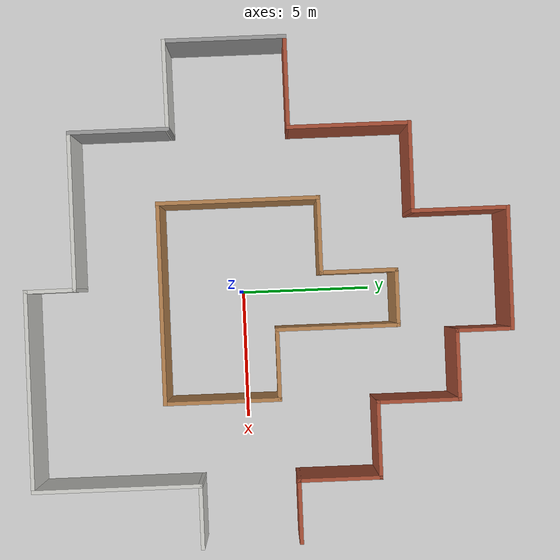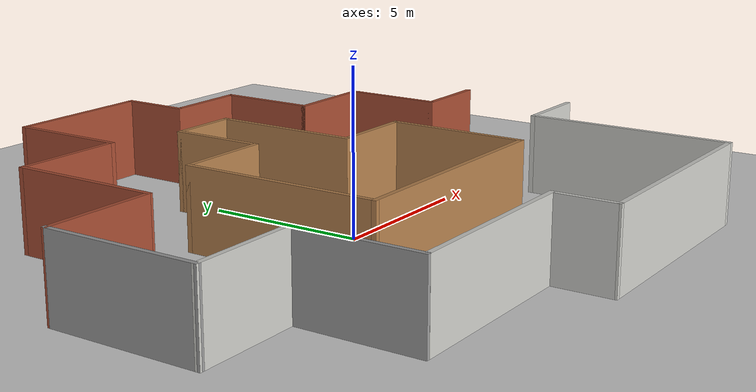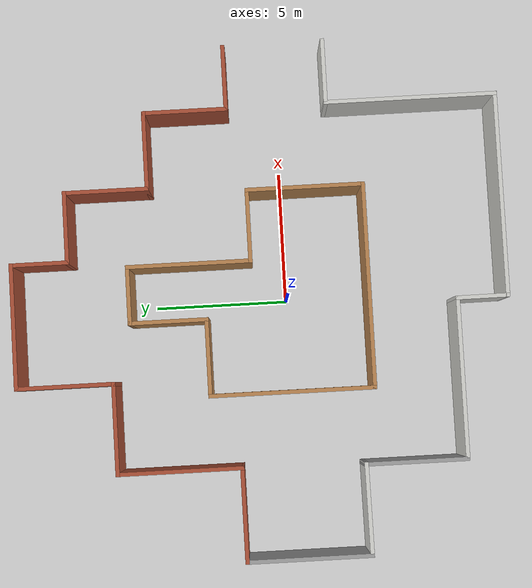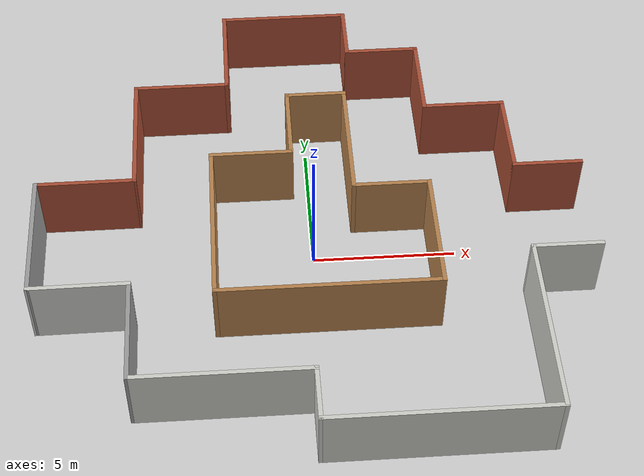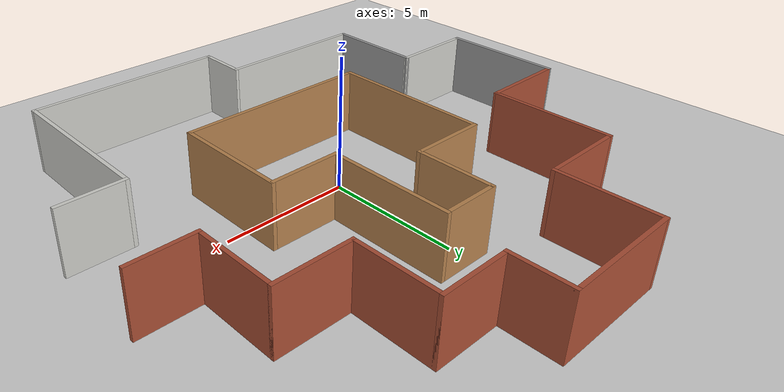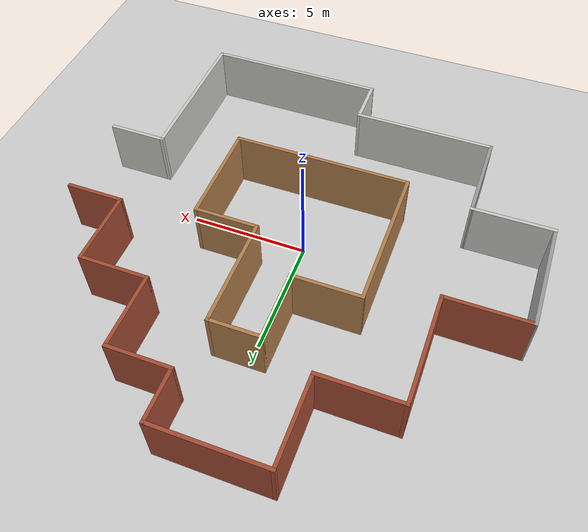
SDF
<sdf version="1.6">
 <world name="default">
  <light name="sun" type="directional">
   <pose>0 0 10 0 -0 0</pose>
   <diffuse>0.8 0.8 0.8 1</diffuse>
   <specular>0.2 0.2 0.2 1</specular>
   <attenuation>
    <range>1000</range>
    <constant>0.9</constant>
    <linear>0.01</linear>
    <quadratic>0.001</quadratic>
   </attenuation>
   <direction>-0.5 0.1 -0.9</direction>
  </light>
  <model name="ground_plane">
   <static>1</static>
   <link name="link">
    <collision name="collision">
     <geometry><plane><normal>0 0 1</normal><size>100 100</size></plane></geometry>
     <surface><friction><ode><mu>100</mu><mu2>50</mu2></ode></friction></surface>
    </collision>
    <visual name="visual">
     <cast_shadows>0</cast_shadows>
     <geometry><plane><normal>0 0 1</normal><size>100 100</size></plane></geometry>
     <material>
      <script><uri>file://media/materials/scripts/gazebo.material</uri><name>Gazebo/Grey</name></script>
     </material>
    </visual>
   </link>
  </model>
  <gravity>0 0 -9.8</gravity>
  <magnetic_field>6e-06 2.3e-05 -4.2e-05</magnetic_field>
  <atmosphere type="adiabatic"/>
  <physics name="default_physics" default="0" type="ode">
   <max_step_size>0.001</max_step_size>
   <real_time_factor>1</real_time_factor>
   <real_time_update_rate>1000</real_time_update_rate>
  </physics>
  <scene><ambient>0.4 0.4 0.4 1</ambient><background>0.7 0.7 0.7 1</background><shadows>1</shadows></scene>
  <spherical_coordinates>
   <surface_model>EARTH_WGS84</surface_model>
   <latitude_deg>0</latitude_deg>
   <longitude_deg>0</longitude_deg>
   <elevation>0</elevation>
   <heading_deg>0</heading_deg>
  </spherical_coordinates>
  <model name="gazebo_course_3_hard">
   <pose>3e-06 1.00001 0 0 -0 1.57079</pose>
   <link name="Wall_0">
    <collision name="Wall_0_Collision">
     <geometry><box><size>2.5 0.15 2.5</size></box></geometry>
     <pose>0 0 1.25 0 -0 0</pose>
    </collision>
    <visual name="Wall_0_Visual">
     <pose>0 0 1.25 0 -0 0</pose>
     <geometry><box><size>2.5 0.15 2.5</size></box></geometry>
     <material>
      <script><uri>file://media/materials/scripts/gazebo.material</uri><name>Gazebo/CeilingTiled</name></script>
      <ambient>1 1 1 1</ambient>
     </material>
     <meta><layer>0</layer></meta>
    </visual>
    <pose>-2.85212 -8.45023 0 0 -0 1.5708</pose>
   </link>
   <link name="Wall_1">
    <collision name="Wall_1_Collision">
     <geometry><box><size>6.5 0.15 2.5</size></box></geometry>
     <pose>0 0 1.25 0 -0 0</pose>
    </collision>
    <visual name="Wall_1_Visual">
     <pose>0 0 1.25 0 -0 0</pose>
     <geometry><box><size>6.5 0.15 2.5</size></box></geometry>
     <material>
      <script><uri>file://media/materials/scripts/gazebo.material</uri><name>Gazebo/CeilingTiled</name></script>
      <ambient>1 1 1 1</ambient>
     </material>
     <meta><layer>0</layer></meta>
    </visual>
    <pose>-6.02712 -7.27524 0 0 -0 3.14159</pose>
   </link>
   <link name="Wall_10">
    <collision name="Wall_10_Collision">
     <geometry><box><size>2.25 0.15 2.5</size></box></geometry>
     <pose>0 0 1.25 0 -0 0</pose>
    </collision>
    <visual name="Wall_10_Visual">
     <pose>0 0 1.25 0 -0 0</pose>
     <geometry><box><size>2.25 0.15 2.5</size></box></geometry>
     <material>
      <script><uri>file://media/materials/scripts/gazebo.material</uri><name>Gazebo/Bricks</name></script>
      <ambient>1 1 1 1</ambient>
     </material>
     <meta><layer>0</layer></meta>
    </visual>
    <pose>8.15255 -1.77532 0 0 -0 0</pose>
   </link>
   <link name="Wall_11">
    <collision name="Wall_11_Collision">
     <geometry><box><size>4.75 0.15 2.5</size></box></geometry>
     <pose>0 0 1.25 0 -0 0</pose>
    </collision>
    <visual name="Wall_11_Visual">
     <pose>0 0 1.25 0 -0 0</pose>
     <geometry><box><size>4.75 0.15 2.5</size></box></geometry>
     <material>
      <script><uri>file://media/materials/scripts/gazebo.material</uri><name>Gazebo/Bricks</name></script>
      <ambient>1 1 1 1</ambient>
     </material>
     <meta><layer>0</layer></meta>
    </visual>
    <pose>9.20255 0.524681 0 0 -0 1.5708</pose>
   </link>
   <link name="Wall_12">
    <collision name="Wall_12_Collision">
     <geometry><box><size>3.75 0.15 2.5</size></box></geometry>
     <pose>0 0 1.25 0 -0 0</pose>
    </collision>
    <visual name="Wall_12_Visual">
     <pose>0 0 1.25 0 -0 0</pose>
     <geometry><box><size>3.75 0.15 2.5</size></box></geometry>
     <material>
      <script><uri>file://media/materials/scripts/gazebo.material</uri><name>Gazebo/Bricks</name></script>
      <ambient>1 1 1 1</ambient>
     </material>
     <meta><layer>0</layer></meta>
    </visual>
    <pose>7.40255 2.82468 0 0 -0 3.14159</pose>
   </link>
   <link name="Wall_13">
    <collision name="Wall_13_Collision">
     <geometry><box><size>3.5 0.15 2.5</size></box></geometry>
     <pose>0 0 1.25 0 -0 0</pose>
    </collision>
    <visual name="Wall_13_Visual">
     <pose>0 0 1.25 0 -0 0</pose>
     <geometry><box><size>3.5 0.15 2.5</size></box></geometry>
     <material>
      <script><uri>file://media/materials/scripts/gazebo.material</uri><name>Gazebo/Bricks</name></script>
      <ambient>1 1 1 1</ambient>
     </material>
     <meta><layer>0</layer></meta>
    </visual>
    <pose>5.60255 4.49968 0 0 -0 1.5708</pose>
   </link>
   <link name="Wall_17">
    <collision name="Wall_17_Collision">
     <geometry><box><size>4.75 0.15 2.5</size></box></geometry>
     <pose>0 0 1.25 0 -0 0</pose>
    </collision>
    <visual name="Wall_17_Visual">
     <pose>0 0 1.25 0 -0 0</pose>
     <geometry><box><size>4.75 0.15 2.5</size></box></geometry>
     <material>
      <script><uri>file://media/materials/scripts/gazebo.material</uri><name>Gazebo/Bricks</name></script>
      <ambient>1 1 1 1</ambient>
     </material>
     <meta><layer>0</layer></meta>
    </visual>
    <pose>3.30255 6.17468 0 0 -0 3.14159</pose>
   </link>
   <link name="Wall_27">
    <collision name="Wall_27_Collision">
     <geometry><box><size>3.9 0.15 2.5</size></box></geometry>
     <pose>0 0 1.25 0 -0 0</pose>
    </collision>
    <visual name="Wall_27_Visual">
     <pose>0 0 1.25 0 -0 0</pose>
     <geometry><box><size>3.9 0.15 2.5</size></box></geometry>
     <material>
      <script><uri>file://media/materials/scripts/gazebo.material</uri><name>Gazebo/Grey</name></script>
      <ambient>1 1 1 1</ambient>
     </material>
     <meta><layer>0</layer></meta>
    </visual>
    <pose>-5.45312 6.28876 0 0 -0 0</pose>
   </link>
   <link name="Wall_30">
    <collision name="Wall_30_Collision">
     <geometry><box><size>3.48595 0.15 2.5</size></box></geometry>
     <pose>0 0 1.25 0 -0 0</pose>
    </collision>
    <visual name="Wall_30_Visual">
     <pose>0 0 1.25 0 -0 0</pose>
     <geometry><box><size>3.48595 0.15 2.5</size></box></geometry>
     <material>
      <script><uri>file://media/materials/scripts/gazebo.material</uri><name>Gazebo/CeilingTiled</name></script>
      <ambient>1 1 1 1</ambient>
     </material>
     <meta><layer>0</layer></meta>
    </visual>
    <pose>-3.59012 7.95676 0 0 -0 1.57799</pose>
   </link>
   <link name="Wall_31">
    <collision name="Wall_31_Collision">
     <geometry><box><size>4.75 0.15 2.5</size></box></geometry>
     <pose>0 0 1.25 0 -0 0</pose>
    </collision>
    <visual name="Wall_31_Visual">
     <pose>0 0 1.25 0 -0 0</pose>
     <geometry><box><size>4.75 0.15 2.5</size></box></geometry>
     <material>
      <script><uri>file://media/materials/scripts/gazebo.material</uri><name>Gazebo/Grey</name></script>
      <ambient>1 1 1 1</ambient>
     </material>
     <meta><layer>0</layer></meta>
    </visual>
    <pose>-1.30212 9.62477 0 0 -0 0</pose>
   </link>
   <link name="Wall_32">
    <collision name="Wall_32_Collision">
     <geometry><box><size>3.60009 0.15 2.5</size></box></geometry>
     <pose>0 0 1.25 0 -0 0</pose>
    </collision>
    <visual name="Wall_32_Visual">
     <pose>0 0 1.25 0 -0 0</pose>
     <geometry><box><size>3.60009 0.15 2.5</size></box></geometry>
     <material>
      <script><uri>file://media/materials/scripts/gazebo.material</uri><name>Gazebo/Bricks</name></script>
      <ambient>1 1 1 1</ambient>
     </material>
     <meta><layer>0</layer></meta>
    </visual>
    <pose>1.00022 7.89972 0 0 -0 -1.56944</pose>
   </link>
   <link name="Wall_35">
    <collision name="Wall_35_Collision">
     <geometry><box><size>7.75 0.15 2.5</size></box></geometry>
     <pose>0 0 1.25 0 -0 0</pose>
    </collision>
    <visual name="Wall_35_Visual">
     <pose>0 0 1.25 0 -0 0</pose>
     <geometry><box><size>7.75 0.15 2.5</size></box></geometry>
     <material>
      <script><uri>file://media/materials/scripts/gazebo.material</uri><name>Gazebo/CeilingTiled</name></script>
      <ambient>1 1 1 1</ambient>
     </material>
     <meta><layer>0</layer></meta>
    </visual>
    <pose>-9.20212 -3.47524 0 0 -0 1.5708</pose>
   </link>
   <link name="Wall_46">
    <collision name="Wall_46_Collision">
     <geometry><box><size>2.02213 0.15 2.5</size></box></geometry>
     <pose>0 0 1.25 0 -0 0</pose>
    </collision>
    <visual name="Wall_46_Visual">
     <pose>0 0 1.25 0 -0 0</pose>
     <geometry><box><size>2.02213 0.15 2.5</size></box></geometry>
     <material>
      <script><uri>file://media/materials/scripts/gazebo.material</uri><name>Gazebo/CeilingTiled</name></script>
      <ambient>1 1 1 1</ambient>
     </material>
     <meta><layer>0</layer></meta>
    </visual>
    <pose>-8.26624 0.327932 0 0 -0 0.003384</pose>
   </link>
   <link name="Wall_47">
    <collision name="Wall_47_Collision">
     <geometry><box><size>6 0.15 2.5</size></box></geometry>
     <pose>0 0 1.25 0 -0 0</pose>
    </collision>
    <visual name="Wall_47_Visual">
     <pose>0 0 1.25 0 -0 0</pose>
     <geometry><box><size>6 0.15 2.5</size></box></geometry>
     <material>
      <script><uri>file://media/materials/scripts/gazebo.material</uri><name>Gazebo/CeilingTiled</name></script>
      <ambient>1 1 1 1</ambient>
     </material>
     <meta><layer>0</layer></meta>
    </visual>
    <pose>-7.33036 3.25865 0 0 -0 1.5708</pose>
   </link>
   <link name="Wall_5">
    <collision name="Wall_5_Collision">
     <geometry><box><size>2.5 0.15 2.5</size></box></geometry>
     <pose>0 0 1.25 0 -0 0</pose>
    </collision>
    <visual name="Wall_5_Visual">
     <pose>0 0 1.25 0 -0 0</pose>
     <geometry><box><size>2.5 0.15 2.5</size></box></geometry>
     <material>
      <script><uri>file://media/materials/scripts/gazebo.material</uri><name>Gazebo/Bricks</name></script>
      <ambient>1 1 1 1</ambient>
     </material>
     <meta><layer>0</layer></meta>
    </visual>
    <pose>0.902548 -8.40032 0 0 -0 1.5708</pose>
   </link>
   <link name="Wall_54">
    <collision name="Wall_54_Collision">
     <geometry><box><size>6.25 0.15 2.5</size></box></geometry>
     <pose>0 0 1.25 0 -0 0</pose>
    </collision>
    <visual name="Wall_54_Visual">
     <pose>0 0 1.25 0 -0 0</pose>
     <geometry><box><size>6.25 0.15 2.5</size></box></geometry>
     <material>
      <script><uri>file://media/materials/scripts/gazebo.material</uri><name>Gazebo/Wood</name></script>
      <ambient>1 1 1 1</ambient>
     </material>
     <meta><layer>0</layer></meta>
    </visual>
    <pose>-1.01415 3.47448 0 0 -0 0</pose>
   </link>
   <link name="Wall_55">
    <collision name="Wall_55_Collision">
     <geometry><box><size>3 0.15 2.5</size></box></geometry>
     <pose>0 0 1.25 0 -0 0</pose>
    </collision>
    <visual name="Wall_55_Visual">
     <pose>0 0 1.25 0 -0 0</pose>
     <geometry><box><size>3 0.15 2.5</size></box></geometry>
     <material>
      <script><uri>file://media/materials/scripts/gazebo.material</uri><name>Gazebo/Wood</name></script>
      <ambient>1 1 1 1</ambient>
     </material>
     <meta><layer>0</layer></meta>
    </visual>
    <pose>2.03585 2.04948 0 0 -0 -1.5708</pose>
   </link>
   <link name="Wall_56">
    <collision name="Wall_56_Collision">
     <geometry><box><size>3 0.15 2.5</size></box></geometry>
     <pose>0 0 1.25 0 -0 0</pose>
    </collision>
    <visual name="Wall_56_Visual">
     <pose>0 0 1.25 0 -0 0</pose>
     <geometry><box><size>3 0.15 2.5</size></box></geometry>
     <material>
      <script><uri>file://media/materials/scripts/gazebo.material</uri><name>Gazebo/Wood</name></script>
      <ambient>1 1 1 1</ambient>
     </material>
     <meta><layer>0</layer></meta>
    </visual>
    <pose>3.46085 0.624483 0 0 -0 0</pose>
   </link>
   <link name="Wall_57">
    <collision name="Wall_57_Collision">
     <geometry><box><size>2.25 0.15 2.5</size></box></geometry>
     <pose>0 0 1.25 0 -0 0</pose>
    </collision>
    <visual name="Wall_57_Visual">
     <pose>0 0 1.25 0 -0 0</pose>
     <geometry><box><size>2.25 0.15 2.5</size></box></geometry>
     <material>
      <script><uri>file://media/materials/scripts/gazebo.material</uri><name>Gazebo/Wood</name></script>
      <ambient>1 1 1 1</ambient>
     </material>
     <meta><layer>0</layer></meta>
    </visual>
    <pose>4.88585 -0.425517 0 0 -0 -1.5708</pose>
   </link>
   <link name="Wall_6">
    <collision name="Wall_6_Collision">
     <geometry><box><size>3.25 0.15 2.5</size></box></geometry>
     <pose>0 0 1.25 0 -0 0</pose>
    </collision>
    <visual name="Wall_6_Visual">
     <pose>0 0 1.25 0 -0 0</pose>
     <geometry><box><size>3.25 0.15 2.5</size></box></geometry>
     <material>
      <script><uri>file://media/materials/scripts/gazebo.material</uri><name>Gazebo/Bricks</name></script>
      <ambient>1 1 1 1</ambient>
     </material>
     <meta><layer>0</layer></meta>
    </visual>
    <pose>2.45255 -7.22532 0 0 -0 0</pose>
   </link>
   <link name="Wall_60">
    <collision name="Wall_60_Collision">
     <geometry><box><size>4.75 0.15 2.5</size></box></geometry>
     <pose>0 0 1.25 0 -0 0</pose>
    </collision>
    <visual name="Wall_60_Visual">
     <pose>0 0 1.25 0 -0 0</pose>
     <geometry><box><size>4.75 0.15 2.5</size></box></geometry>
     <material>
      <script><uri>file://media/materials/scripts/gazebo.material</uri><name>Gazebo/Wood</name></script>
      <ambient>1 1 1 1</ambient>
     </material>
     <meta><layer>0</layer></meta>
    </visual>
    <pose>2.58585 -1.47552 0 0 -0 3.14159</pose>
   </link>
   <link name="Wall_61">
    <collision name="Wall_61_Collision">
     <geometry><box><size>2.75 0.15 2.5</size></box></geometry>
     <pose>0 0 1.25 0 -0 0</pose>
    </collision>
    <visual name="Wall_61_Visual">
     <pose>0 0 1.25 0 -0 0</pose>
     <geometry><box><size>2.75 0.15 2.5</size></box></geometry>
     <material>
      <script><uri>file://media/materials/scripts/gazebo.material</uri><name>Gazebo/Wood</name></script>
      <ambient>1 1 1 1</ambient>
     </material>
     <meta><layer>0</layer></meta>
    </visual>
    <pose>0.285847 -2.77552 0 0 -0 -1.5708</pose>
   </link>
   <link name="Wall_64">
    <collision name="Wall_64_Collision">
     <geometry><box><size>7.75 0.15 2.5</size></box></geometry>
     <pose>0 0 1.25 0 -0 0</pose>
    </collision>
    <visual name="Wall_64_Visual">
     <pose>0 0 1.25 0 -0 0</pose>
     <geometry><box><size>7.75 0.15 2.5</size></box></geometry>
     <material>
      <script><uri>file://media/materials/scripts/gazebo.material</uri><name>Gazebo/Wood</name></script>
      <ambient>1 1 1 1</ambient>
     </material>
     <meta><layer>0</layer></meta>
    </visual>
    <pose>-4.06415 -0.325517 0 0 -0 -1.5708</pose>
   </link>
   <link name="Wall_65">
    <collision name="Wall_65_Collision">
     <geometry><box><size>4.5 0.15 2.5</size></box></geometry>
     <pose>0 0 1.25 0 -0 0</pose>
    </collision>
    <visual name="Wall_65_Visual">
     <pose>0 0 1.25 0 -0 0</pose>
     <geometry><box><size>4.5 0.15 2.5</size></box></geometry>
     <material>
      <script><uri>file://media/materials/scripts/gazebo.material</uri><name>Gazebo/Wood</name></script>
      <ambient>1 1 1 1</ambient>
     </material>
     <meta><layer>0</layer></meta>
    </visual>
    <pose>-1.88915 -4.12552 0 0 -0 0</pose>
   </link>
   <link name="Wall_7">
    <collision name="Wall_7_Collision">
     <geometry><box><size>3 0.15 2.5</size></box></geometry>
     <pose>0 0 1.25 0 -0 0</pose>
    </collision>
    <visual name="Wall_7_Visual">
     <pose>0 0 1.25 0 -0 0</pose>
     <geometry><box><size>3 0.15 2.5</size></box></geometry>
     <material>
      <script><uri>file://media/materials/scripts/gazebo.material</uri><name>Gazebo/Bricks</name></script>
      <ambient>1 1 1 1</ambient>
     </material>
     <meta><layer>0</layer></meta>
    </visual>
    <pose>4.00255 -5.80032 0 0 -0 1.5708</pose>
   </link>
   <link name="Wall_8">
    <collision name="Wall_8_Collision">
     <geometry><box><size>3.25 0.15 2.5</size></box></geometry>
     <pose>0 0 1.25 0 -0 0</pose>
    </collision>
    <visual name="Wall_8_Visual">
     <pose>0 0 1.25 0 -0 0</pose>
     <geometry><box><size>3.25 0.15 2.5</size></box></geometry>
     <material>
      <script><uri>file://media/materials/scripts/gazebo.material</uri><name>Gazebo/Bricks</name></script>
      <ambient>1 1 1 1</ambient>
     </material>
     <meta><layer>0</layer></meta>
    </visual>
    <pose>5.55255 -4.37532 0 0 -0 0</pose>
   </link>
   <link name="Wall_9">
    <collision name="Wall_9_Collision">
     <geometry><box><size>2.75 0.15 2.5</size></box></geometry>
     <pose>0 0 1.25 0 -0 0</pose>
    </collision>
    <visual name="Wall_9_Visual">
     <pose>0 0 1.25 0 -0 0</pose>
     <geometry><box><size>2.75 0.15 2.5</size></box></geometry>
     <material>
      <script><uri>file://media/materials/scripts/gazebo.material</uri><name>Gazebo/Bricks</name></script>
      <ambient>1 1 1 1</ambient>
     </material>
     <meta><layer>0</layer></meta>
    </visual>
    <pose>7.10255 -3.07532 0 0 -0 1.5708</pose>
   </link>
   <static>1</static>
  </model>
  <audio><device>default</device></audio>
 </world>
</sdf>
